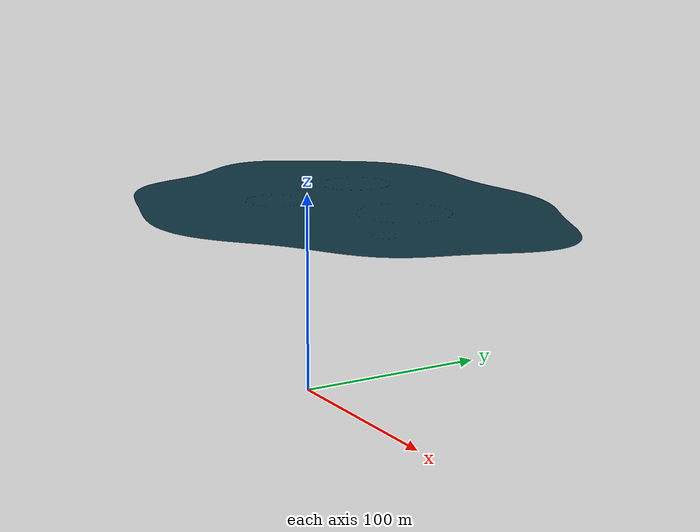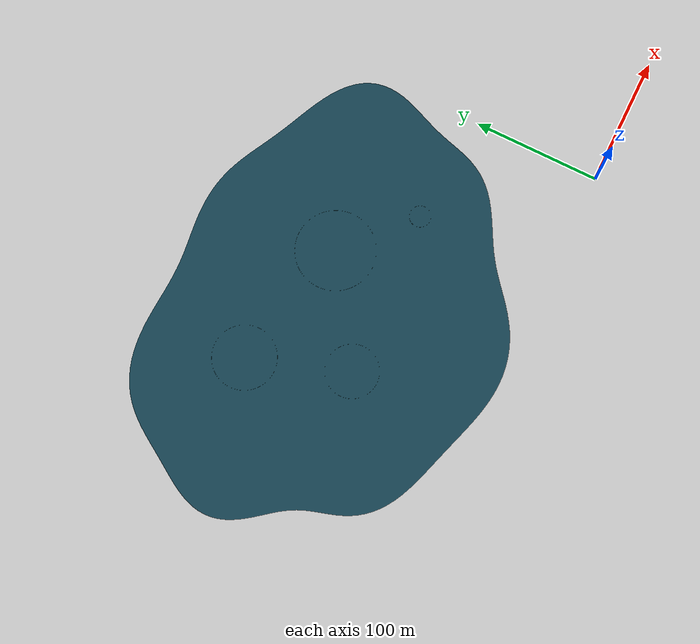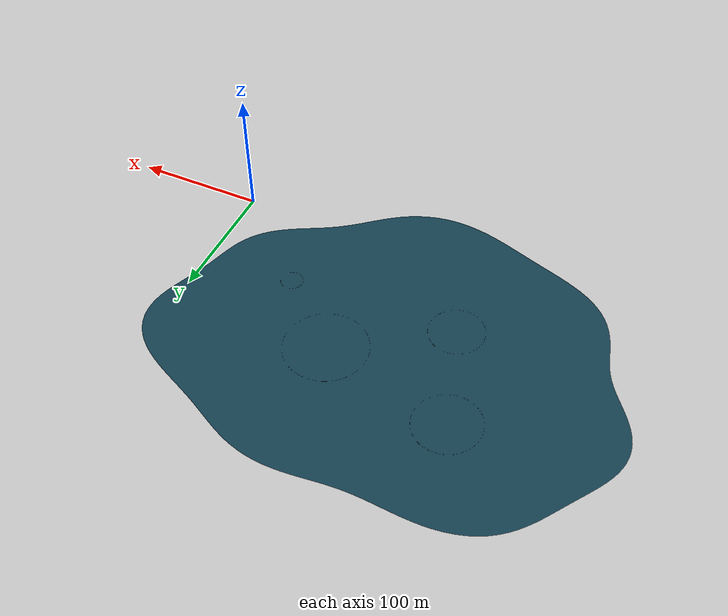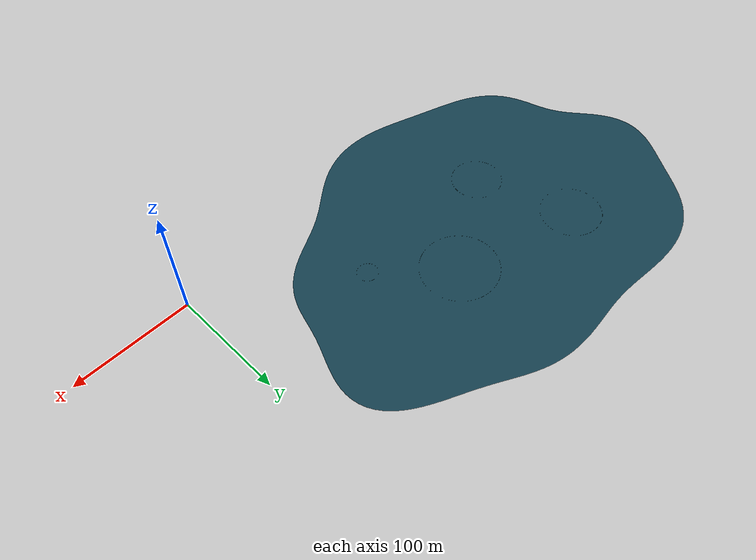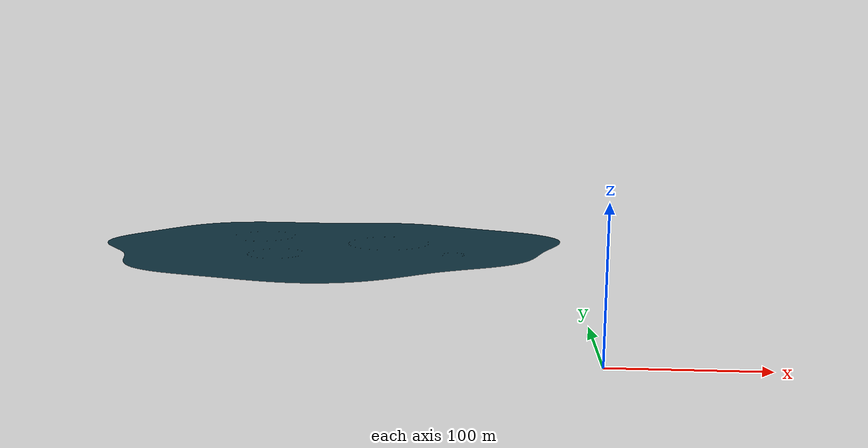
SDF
<?xml version='1.0' encoding='utf-8'?>
<sdf version="1.9">
  <model name="summit_lake">
    <static>true</static>
    <link name="structure">
      <visual name="visual_water">
        <geometry>
          <mesh>
            <uri>model://summit_lake/meshes/visual/water.dae</uri>
          </mesh>
        </geometry>
        <material>
          <ambient>0.075 0.24 0.3 1</ambient>
          <diffuse>0.075 0.24 0.3 1</diffuse>
          <specular>0.15 0.15 0.15 1</specular>
          <pbr>
            <metal>
              <roughness>0.16</roughness>
              <metalness>0.0</metalness>
            </metal>
          </pbr>
        </material>
      </visual>
      <visual name="visual_water_ripple">
        <geometry>
          <mesh>
            <uri>model://summit_lake/meshes/visual/water_ripple.dae</uri>
          </mesh>
        </geometry>
        <material>
          <ambient>0.11 0.31 0.35 1</ambient>
          <diffuse>0.11 0.31 0.35 1</diffuse>
          <specular>0.15 0.15 0.15 1</specular>
          <pbr>
            <metal>
              <roughness>0.18</roughness>
              <metalness>0</metalness>
            </metal>
          </pbr>
        </material>
      </visual>
    </link>
  </model>
</sdf>
